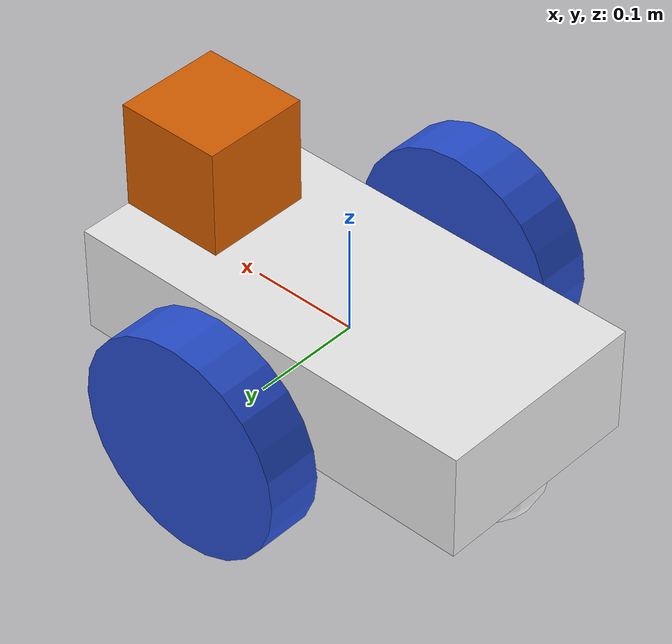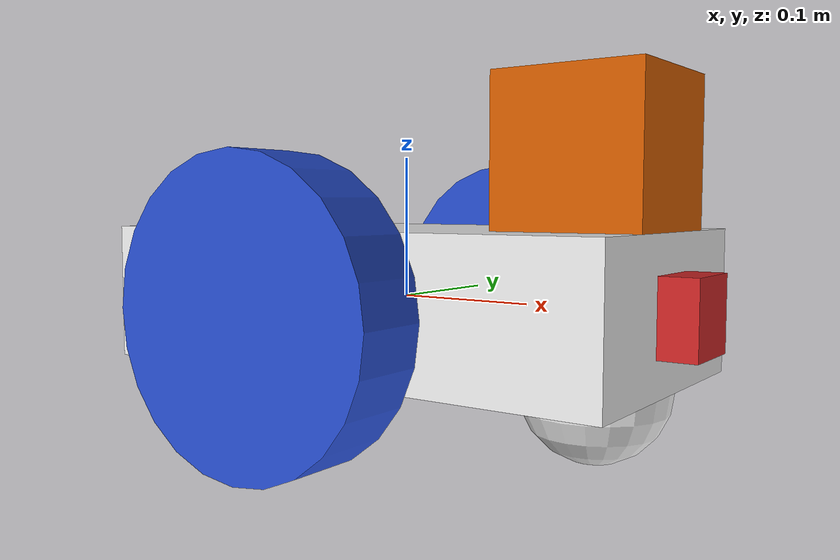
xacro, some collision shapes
<?xml version='1.0'?>

<robot name="my_robot"
    xmlns:xacro="http://www.ros.org/wiki/xacro">
    <xacro:include filename="$(find my_robot)/urdf/my_robot.gazebo" />
    <xacro:property name="link_type" value="cuboidal" />
    <link name="robot_footprint"></link>

    <joint name="robot_footprint_joint" type="fixed">
        <origin xyz="0 0 0" rpy="0 0 0" />
        <parent link="robot_footprint"/>
        <child link="chassis" />
    </joint>

    <gazebo reference="chassis">
        <material>Gazebo/White</material>
    </gazebo>

    <link name='chassis'>
        <pose>0 0 0.1 0 0 0</pose>

        <inertial>
            <mass value="15.0"/>
            <origin xyz="0.0 0 0" rpy=" 0 0 0"/>
            <inertia ixx="0.1" ixy="0" ixz="0" iyy="0.1" iyz="0" izz="0.1" />
        </inertial>

        <collision name='chassis_collision'>
            <origin xyz="0 0 0" rpy=" 0 0 0"/>
            <geometry>
                <box size=".4 .2 .1"/>
            </geometry>
        </collision>

        <visual name='chassis_visual'>
            <origin xyz="0 0 0" rpy=" 0 0 0"/>
            <geometry>
                <box size=".4 .2 .1"/>
            </geometry>
        </visual>

        <collision name='back_caster_collision'>
            <origin xyz="-0.15 0 -0.05" rpy=" 0 0 0"/>
            <geometry>
                <sphere radius="0.0499"/>
            </geometry>
        </collision>

        <visual name='back_caster_visual'>
            <origin xyz="-0.15 0 -0.05" rpy=" 0 0 0"/>
            <geometry>
                <sphere radius="0.05"/>
            </geometry>
        </visual>

        <collision name='front_caster_collision'>
            <origin xyz="0.15 0 -0.05" rpy=" 0 0 0"/>
            <geometry>
                <sphere radius="0.0499"/>
            </geometry>
        </collision>

        <visual name='front_caster_visual'>
            <origin xyz="0.15 0 -0.05" rpy=" 0 0 0"/>
            <geometry>
                <sphere radius="0.05"/>
            </geometry>
        </visual>

    </link>
    <gazebo reference="left_wheel">
        <material>Gazebo/Blue</material>
    </gazebo>

    <link name="left_wheel">
        <visual>
            <origin xyz="0 0 0" rpy="0 1.5707 1.5707"/>
            <geometry>
                <cylinder radius="0.1" length="0.05"/>
            </geometry>
        </visual>

        <collision>
            <origin xyz="0 0 0" rpy="0 1.5707 1.5707"/>
            <geometry>
                <cylinder radius="0.1" length="0.05"/>
            </geometry>
        </collision>

        <inertial>
            <mass value="5.0" />
            <origin xyz="0 0 0" rpy="0 1.5707 1.5707" />
            <inertia ixx="0.1" ixy="0" ixz="0" iyy="0.1" iyz="0" izz="0.1" />
        </inertial>
    </link>

    <joint name="left_wheel_hinge" type="continuous">
        <origin xyz="0 0.17 0" rpy="0 0 0"/>
        <child link="left_wheel"/>
        <parent link="chassis"/>
        <axis xyz="0 1 0" rpy="0 0 0"/>
        <limit effort="10000" velocity="1000"/>
        <dynamics damping="1.0" friction="1.0"/>
    </joint>

    <gazebo reference="right_wheel">
        <material>Gazebo/Blue</material>
    </gazebo>

    <link name="right_wheel">
        <visual>
            <origin xyz="0 0 0" rpy="0 1.5707 1.5707"/>
            <geometry>
                <cylinder radius="0.1" length="0.05"/>
            </geometry>
        </visual>

        <collision>
            <origin xyz="0 0 0" rpy="0 1.5707 1.5707"/>
            <geometry>
                <cylinder radius="0.1" length="0.05"/>
            </geometry>
        </collision>

        <inertial>
            <mass value="5.0" />
            <origin xyz="0 0 0" rpy="0 1.5707 1.5707" />
            <inertia ixx="0.1" ixy="0" ixz="0" iyy="0.1" iyz="0" izz="0.1" />
        </inertial>
    </link>

    <joint name="right_wheel_hinge" type="continuous">
        <origin xyz="0 -0.15 0" rpy="0 0 0"/>
        <child link="right_wheel"/>
        <parent link="chassis"/>
        <axis xyz="0 1 0" rpy="0 0 0"/>
        <limit effort="10000" velocity="1000"/>
        <dynamics damping="1.0" friction="1.0"/>
    </joint>

    <gazebo reference="camera">
        <material>Gazebo/Red</material>
    </gazebo>

    <link name="camera">
        <origin xyz="0 0 0" rpy="0 0 0"/>
        <mass value="0.1"/>
        <inertial>
            <mass value="0.1" />
            <inertia ixx="1e-6" ixy="0" ixz="0" iyy="1e-6" iyz="0" izz="1e-6" />
        </inertial>
        <visual>
            <origin xyz="0 0 0" rpy="0 0 0"/>
            <geometry>
                <box size=".05 .05 .05"/>
            </geometry>
        </visual>
        <collision>
            <origin xyz="0 0 0" rpy="0 0 0"/>
            <geometry>
                <box size=".05 .05 .05"/>
            </geometry>
        </collision>
    </link>

    <joint name="camera_joint" type="fixed">
        <origin xyz="0.2 0 0" rpy="0 0 0"/>
        <parent link="chassis"/>
        <child link="camera"/>
    </joint>

    <link name="hokuyo">
        <origin xyz="0 0 0" rpy="0 0 0" />
        <inertial>
            <mass value="1e-5" />
            <inertia ixx="1e-6" ixy="0" ixz="0" iyy="1e-6" iyz="0" izz="1e-6" />
        </inertial>

        <collision>
            <origin xyz="0 0 0" rpy="0 0 0" />
            <geometry>
                <box size="0.1 0.1 0.1"/>
            </geometry>
        </collision>

        <visual>
            <origin xyz="0 0 0" rpy="0 0 0" />
            <geometry>
                <mesh filename="package://my_robot/meshes/hokuyo.dae"/>
            </geometry>
        </visual>
    </link>

    <joint name="hokuyo_joint" type="fixed">
        <axis xyz="0 1 0"/>
        <origin xyz="0.15 0 0.1" rpy="0 0 0"/>
        <parent link="chassis"/>
        <child link="hokuyo"/>
    </joint>

</robot>
